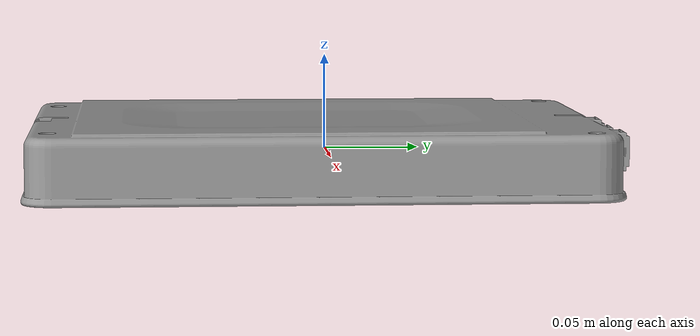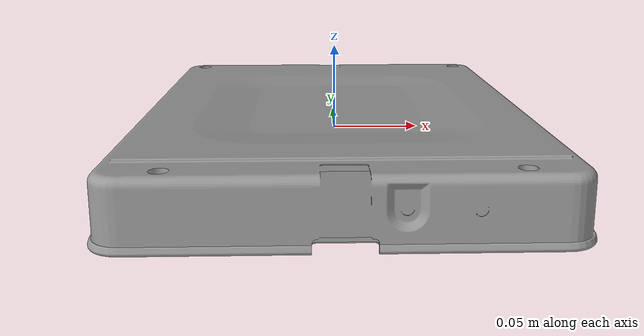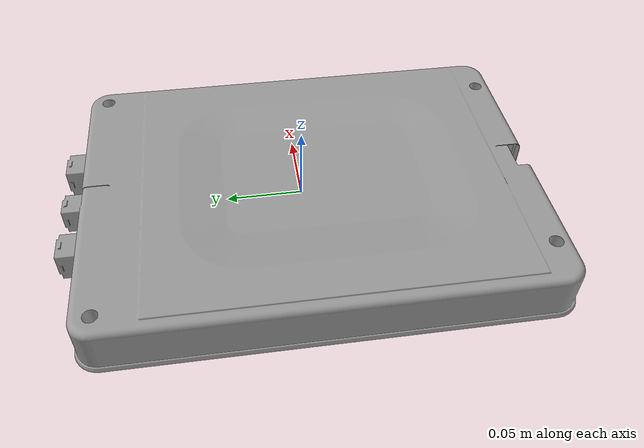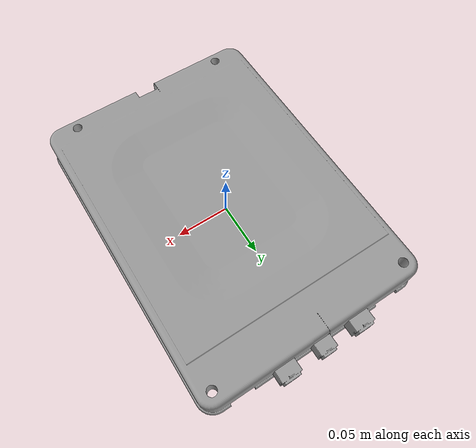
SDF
<?xml version="1.0"?>

<sdf version="1.5">
  <model name="leaf_cell">
    <static>false</static>
    <link name="leaf_cell_link">
      <collision name="collision">
        <geometry>
          <box>
            <size> 0.2228 0.3149 0.035</size>
          </box>
        </geometry>
        <surface>
          <friction>
            <ode>
              <mu>0.99</mu>
              <mu2>0.99</mu2>
            </ode>
          </friction>
        </surface>
      </collision>

      <visual name="visual">
        <geometry>
          <mesh>
            <uri>model://leaf_cell/meshes/leaf_cell.dae</uri>
          </mesh>
        </geometry>
        <material>
          <script>
            <uri>file://media/materials/scripts/gazebo.material</uri>
            <name>Gazebo/Grey</name>
          </script>
        </material>
      </visual>

      <inertial>
        <pose>0.0 0.0 0.0 0.0 0.0 -1.5707</pose>
        <mass>0.1</mass>
        <inertia>
          <ixx>0.000539835</ixx>
          <iyy>0.00075853</iyy>
          <izz>0.0012813</izz>
          <ixy>0.0</ixy>
          <ixz>0.0</ixz>
          <iyz>0.0</iyz>
        </inertia>
      </inertial>

    </link>

  </model>
</sdf>
